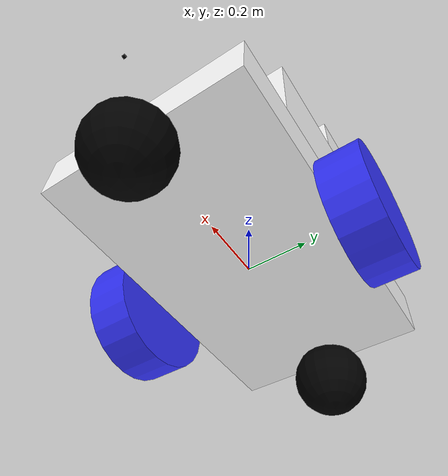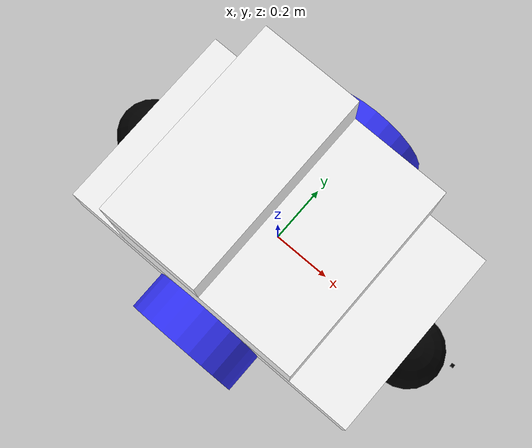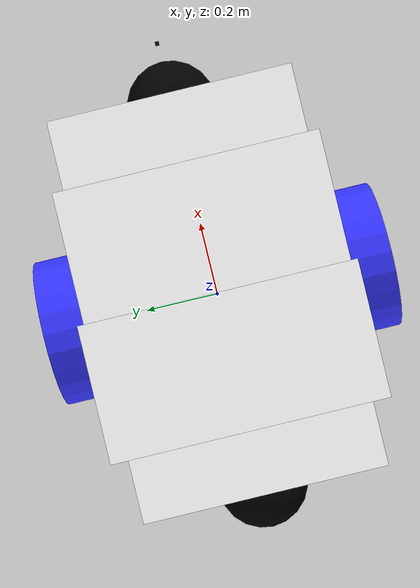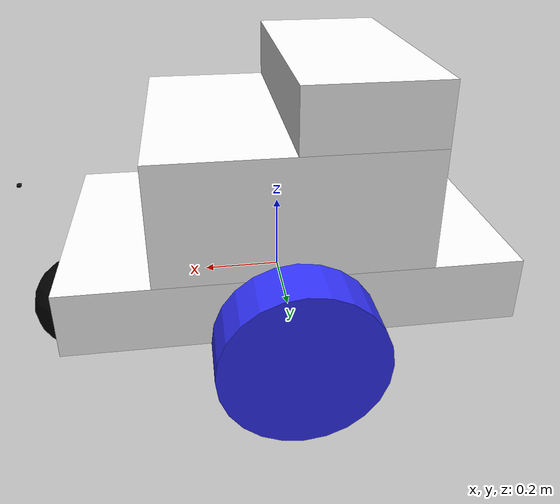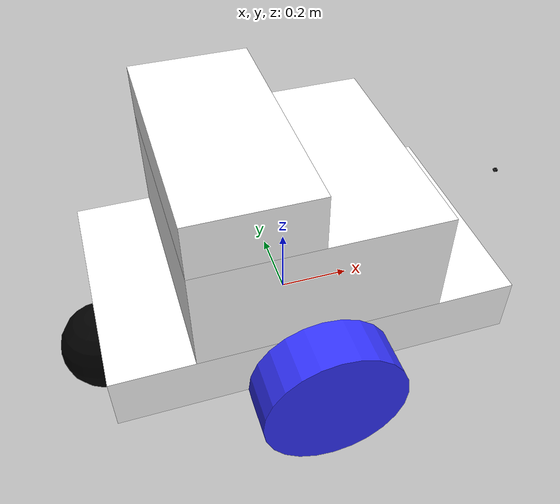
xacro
<?xml version="1.0"?>
<robot name="dynabot" xmlns:xacro="http://www.ros.org/wiki/xacro">

    <material name="white">
        <color rgba="1 1 1 1" />
    </material>

    <material name="orange">
        <color rgba="1 0.3 0.1 1"/>
    </material>

    <material name="blue">
        <color rgba="0.2 0.2 1 1"/>
    </material>

    <material name="black">
        <color rgba="0 0 0 1"/>
    </material>

    <material name="red">
        <color rgba="1 0 0 1"/>
    </material>

    <xacro:arg name="is_ignition" default="true" />

    <!--INCLUDE GAZEBO-->
    <xacro:include filename="$(find dynabot_description)/description/dynabot_gazebo.xacro" />

    <!--INCLUDE ROS2 CONTROL-->
    <xacro:include filename="$(find dynabot_description)/description/dynabot_ros2_control.xacro" />

    <!--BASE LINK-->
    <link name="base_link"/>

    <!--CHASSIS LINK-->
    <link name="chassis">
        <!--CHASSIS VISUAL-->
        <visual>
            <origin xyz="0.5495 0 0.08135" />
            <geometry>
                <box size="1.099 0.6689 0.1627" />
            </geometry>
            <material name="white" />
        </visual>
        <!--CHASSIS COLLISION-->
        <collision>
            <origin xyz="0.5495 0 0.08135" />
            <geometry>
                <box size="1.099 0.6689 0.1627" />
            </geometry>
        </collision>
        <!--CHASSIS INERTIA-->
        <inertial>
            <origin xyz="0.5495 0 0.08135" rpy="0 0 0" />
            <mass value="29.58" />
            <inertia ixx="1.081" ixy="0.0" ixz="0.0"
                    iyy="2.972" iyz="0.0"
                    izz="3.972" />
        </inertial>
    </link>

    <!--CHASSIS JOINT-->
    <joint name="chassis_joint" type="fixed">
        <parent link="base_link" />
        <child link="chassis" />
        <origin xyz="-0.5495 0 0" />
    </joint>

    <!--BOTTOM FRAME-->
    <link name="bottom_frame">
        <visual>
            <origin xyz="0.3298 0 0.14925" />
            <geometry>
                <box size="0.6596 0.6689 0.2985" />
            </geometry>
            <material name="white" />
        </visual>
        <collision>
            <origin xyz="0.3298 0 0.14925" />
            <geometry>
                <box size="0.6596 0.6689 0.2985" />
            </geometry>
        </collision>
        <inertial>
            <origin xyz="0.3298 0 0.14925" rpy="0 0 0" />
            <mass value="8.22" />
            <inertia ixx="0.244" ixy="0.0" ixz="0.0"
                    iyy="0.244" iyz="0.0"
                    izz="0.244" />
        </inertial>
    </link>

    <!--BOTTOM FRAME JOINT-->
    <joint name="bottom_frame_joint" type="fixed">
        <parent link="chassis" />
        <child link="bottom_frame" />
        <origin xyz="0.2197 0 0.1627" />
    </joint>

    <!--TOP FRAME-->
    <link name="top_frame">
        <visual>
            <origin xyz="0.1651 0 0.0762" />
            <geometry>
                <box size="0.3302 0.6689 0.1524" />
            </geometry>
            <material name="white" />
        </visual>
        <collision>
            <origin xyz="0.1651 0 0.0762" />
            <geometry>
                <box size="0.3302 0.6689 0.1524" />
            </geometry>
        </collision>
        <inertial>
            <origin xyz="0.1651 0 0.0762" rpy="0 0 0" />
            <mass value="8.22" />
            <inertia ixx="0.061" ixy="0.0" ixz="0.0"
                    iyy="0.061" iyz="0.0"
                    izz="0.061" />
        </inertial>
    </link>

    <!--TOP FRAME JOINT-->
    <joint name="top_frame_joint" type="fixed">
        <parent link="bottom_frame" />
        <child link="top_frame" />
        <origin xyz="0 0 0.2985" />
    </joint>

    <!--LEFT WHEEL LINK-->
    <link name="left_wheel">
        <visual>
            <origin xyz="0 0 0.0681" />
            <geometry>
                <cylinder radius="0.202" length=".1362" />
            </geometry>
            <material name="blue" />
        </visual>
        <collision>
            <origin xyz="0 0 0.0681" />
            <geometry>
                <cylinder radius="0.202" length=".1362" />
            </geometry>
        </collision>
        <inertial>
            <origin xyz="0 0 0.0681" rpy="0 0 0" />
            <mass value="6.41" />
            <inertia ixx="0.131" ixy="0.0" ixz="0.0"
                    iyy="0.131" iyz="0.0"
                    izz="0.261" />
        </inertial>
    </link>

    <!--LEFT WHEEL JOINT-->
    <joint name="left_wheel_joint" type="continuous">
        <parent link="base_link"/>
        <child link="left_wheel"/>
        <origin xyz="0 0.33445 0" rpy="-1.5708 0 0" />
        <axis xyz="0 0 1" />
    </joint>

    <!--RIGHT WHEEL LINK-->
    <link name="right_wheel">
        <visual>
            <origin xyz="0 0 0.0681" />
            <geometry>
                <cylinder radius="0.202" length=".1362" />
            </geometry>
            <material name="blue" />
        </visual>
        <collision>
            <origin xyz="0 0 0.0681" />
            <geometry>
                <cylinder radius="0.202" length=".1362" />
            </geometry>
        </collision>
        <inertial>
            <origin xyz="0 0 0.0681" rpy="0 0 0" />
            <mass value="6.41" />
            <inertia ixx="0.131" ixy="0.0" ixz="0.0"
                    iyy="0.131" iyz="0.0"
                    izz="0.261" />
        </inertial>
    </link>

    <!--RIGHT WHEEL JOINT-->
    <joint name="right_wheel_joint" type="continuous">
        <parent link="base_link"/>
        <child link="right_wheel"/>
        <origin xyz="0 -0.33445 0" rpy="1.5708 0 0" />
        <axis xyz="0 0 -1" />
    </joint>

    <!--FRONT CASTER WHEEL LINK-->
    <link name="front_caster_wheel">
        <visual>
            <geometry>
                <sphere radius="0.127" />
            </geometry>
            <material name="black" />
        </visual>
        <collision>
            <geometry>
                <sphere radius="0.127" />
            </geometry>
        </collision>
        <inertial>
            <origin xyz="0 0 0" rpy="0 0 0" />
            <mass value="2.27" />
            <inertia ixx="0.001" ixy="0.0" ixz="0.0"
                    iyy="0.001" iyz="0.0"
                    izz="0.001" />
        </inertial>
    </link>

    <!--FRONT CASTER WHEEL JOINT-->
    <joint name="front_caster_wheel_joint" type="fixed">
        <parent link="chassis" />
        <child link="front_caster_wheel" />
        <origin xyz="1.099 0 -0.075" />
    </joint>

    <!--REAR CASTER WHEEL LINK-->
    <link name="rear_caster_wheel">
        <visual>
            <geometry>
                <sphere radius="0.127" />
            </geometry>
            <material name="black" />
        </visual>
        <collision>
            <geometry>
                <sphere radius="0.127" />
            </geometry>
        </collision>
        <inertial>
            <origin xyz="0 0 0" rpy="0 0 0" />
            <mass value="2.27" />
            <inertia ixx="0.001" ixy="0.0" ixz="0.0"
                    iyy="0.001" iyz="0.0"
                    izz="0.001" />
        </inertial>
    </link>

    <!--REAR CASTER WHEEL JOINT-->
    <joint name="rear_caster_wheel_joint" type="fixed">
        <parent link="chassis" />
        <child link="rear_caster_wheel" />
        <origin xyz="0 0 -0.075" />
    </joint>

    <!--IMU-->
    <link name="imu">
        <!--IMU INERTIAL-->
        <inertial>
            <origin xyz="0 0 0" rpy="0 0 0" />
            <mass value="0.13" />
            <inertia ixx="0.0000019" ixy="0.0" ixz="0.0"
                    iyy="0.0000019" iyz="0.0"
                    izz="0.0000022" />
        </inertial>
        <!--IMU VISUAL-->
        <visual>
            <origin xyz="0 0 0" rpy="0 0 0" />
            <geometry>
                <box size="0.01 0.01 0.007" />
            </geometry>
            <material name="black" />
        </visual>
        <!--IMU COLLISION-->
        <collision>
            <geometry>
                <box size="0.01 0.01 0.007" />
            </geometry>
        </collision>
    </link>

    <!--IMU JOINT-->
    <joint name="imu_joint" type="fixed">
        <parent link="base_link" />
        <child link="imu" />
        <origin xyz="0.658 0 0.2858" rpy="0 0 0" />
    </joint>
</robot>
